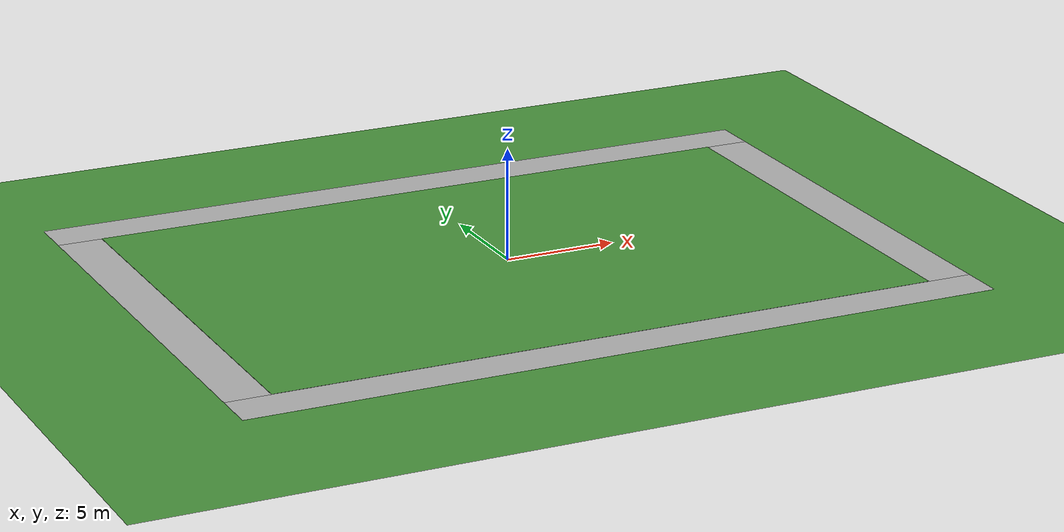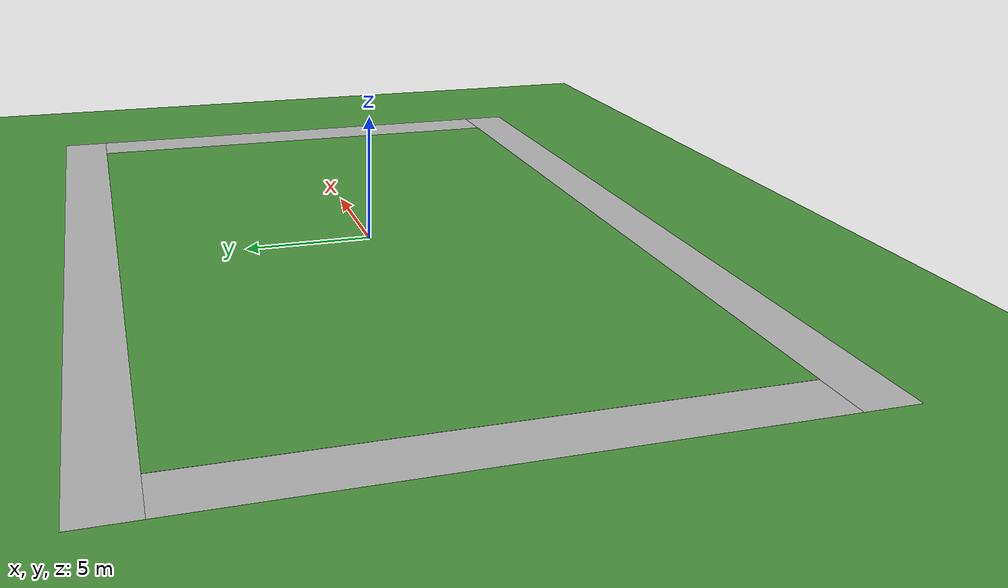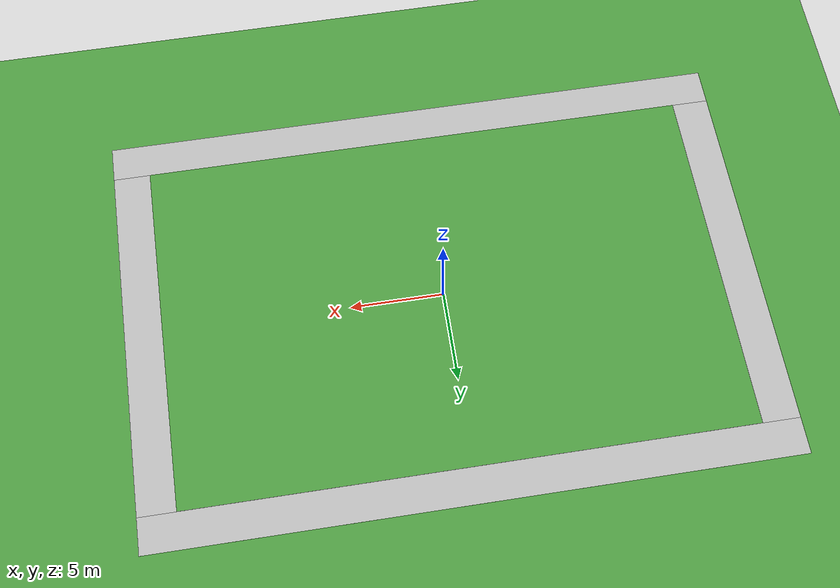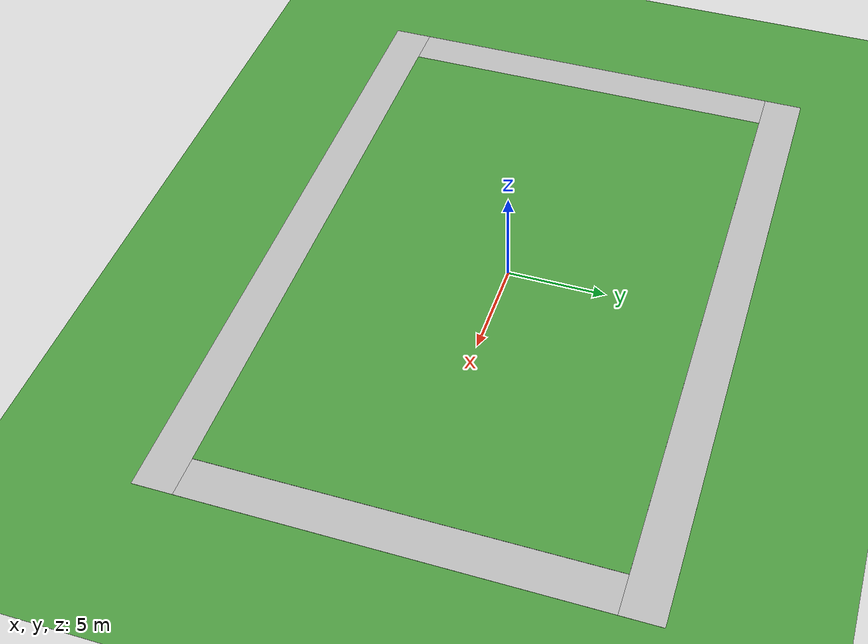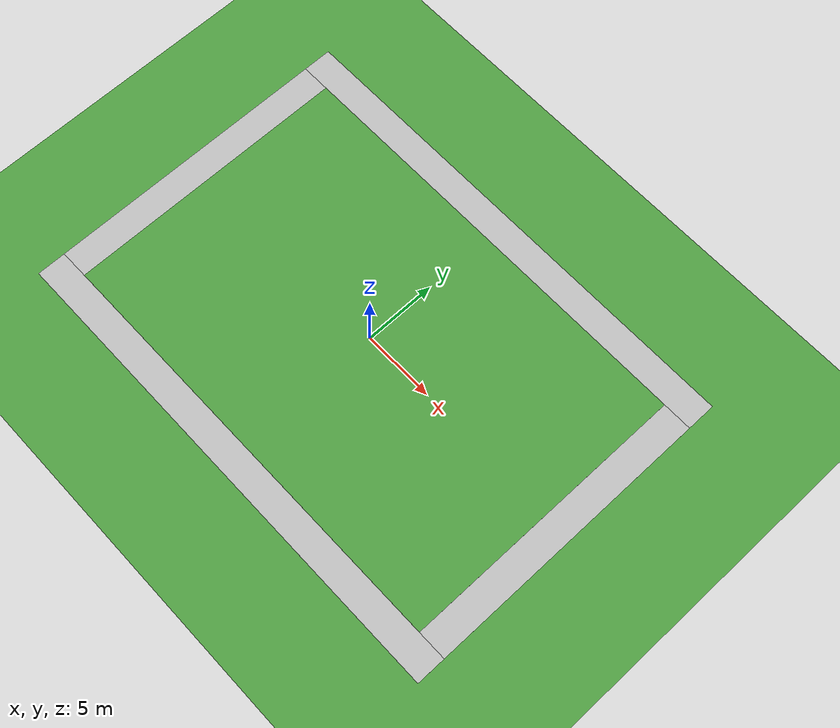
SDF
<sdf version="1.6">
 <world name="default">
  <physics name="default_physics" default="0" type="ode">
   <ode>
    <solver>
     <type>quick</type>
     <iters>100</iters>
     <sor>1</sor>
     <use_dynamic_moi_rescaling>0</use_dynamic_moi_rescaling>
    </solver>
    <constraints>
     <cfm>0</cfm>
     <erp>0.2</erp>
     <contact_max_correcting_vel>0.1</contact_max_correcting_vel>
     <contact_surface_layer>0</contact_surface_layer>
    </constraints>
   </ode>
   <real_time_update_rate>0</real_time_update_rate>
   <max_step_size>0.0025</max_step_size>
   <real_time_factor>1</real_time_factor>
  </physics>
  <light name="sun" type="directional">
   <pose>0 0 10 0 -0 0</pose>
   <diffuse>0.8 0.8 0.8 1</diffuse>
   <specular>0.2 0.2 0.2 1</specular>
   <attenuation>
    <range>1000</range>
    <constant>0.9</constant>
    <linear>0.01</linear>
    <quadratic>0.001</quadratic>
   </attenuation>
   <direction>-0.5 0.1 -0.9</direction>
  </light>
  <model name="ground_plane">
   <static>1</static>
   <link name="link">
    <collision name="collision">
     <geometry><plane><normal>0 0 1</normal><size>5000 5000</size></plane></geometry>
     <surface><friction><ode><mu>1</mu><mu2>1</mu2></ode></friction></surface>
    </collision>
    <visual name="grass">
     <pose>0 0 -0.1 0 -0 0</pose>
     <cast_shadows>0</cast_shadows>
     <geometry><plane><normal>0 0 1</normal><size>5000 5000</size></plane></geometry>
     <material>
      <script><uri>file://media/materials/scripts/gazebo.material</uri><name>Gazebo/Grass</name></script>
     </material>
    </visual>
   </link>
  </model>
  <gravity>0 0 -9.8</gravity>
  <magnetic_field>6e-06 2.3e-05 -4.2e-05</magnetic_field>
  <atmosphere type="adiabatic"/>
  <scene><ambient>0.4 0.4 0.4 1</ambient><background>0.7 0.7 0.7 1</background><shadows>1</shadows></scene>
  <spherical_coordinates>
   <surface_model>EARTH_WGS84</surface_model>
   <latitude_deg>0</latitude_deg>
   <longitude_deg>0</longitude_deg>
   <elevation>0</elevation>
   <heading_deg>0</heading_deg>
  </spherical_coordinates>
  <model name="robocup_3d_field">
   <static>1</static>
   <link name="field">
    <pose>0 0 0.01 0 -0 0</pose>
    <collision name="collision">
     <geometry><plane><normal>0 0 1</normal><size>30 20</size></plane></geometry>
     <surface><friction><ode><mu>100</mu><mu2>50</mu2></ode></friction></surface>
    </collision>
    <visual name="base1">
     <pose>0 11 0.001 0 -0 0</pose>
     <cast_shadows>0</cast_shadows>
     <geometry><plane><normal>0 0 1</normal><size>34 2</size></plane></geometry>
     <material>
      <script>
       <uri>model://robocup_3Dsim_field/materials/scripts/</uri>
       <uri>model://robocup_3Dsim_field/materials/textures/</uri>
       <name>RoboCup/FieldBorder</name>
      </script>
     </material>
    </visual>
    <visual name="base2">
     <pose>0 -11 0.001 0 -0 0</pose>
     <cast_shadows>0</cast_shadows>
     <geometry><plane><normal>0 0 1</normal><size>34 2</size></plane></geometry>
     <material>
      <script>
       <uri>model://robocup_3Dsim_field/materials/scripts/</uri>
       <uri>model://robocup_3Dsim_field/materials/textures/</uri>
       <name>RoboCup/FieldBorder</name>
      </script>
     </material>
    </visual>
    <visual name="base3">
     <pose>16 0 0.001 0 -0 0</pose>
     <cast_shadows>0</cast_shadows>
     <geometry><plane><normal>0 0 1</normal><size>2 20</size></plane></geometry>
     <material>
      <script>
       <uri>model://robocup_3Dsim_field/materials/scripts/</uri>
       <uri>model://robocup_3Dsim_field/materials/textures/</uri>
       <name>RoboCup/FieldBorder</name>
      </script>
     </material>
    </visual>
    <visual name="base4">
     <pose>-16 0 0.001 0 -0 0</pose>
     <cast_shadows>0</cast_shadows>
     <geometry><plane><normal>0 0 1</normal><size>2 20</size></plane></geometry>
     <material>
      <script>
       <uri>model://robocup_3Dsim_field/materials/scripts/</uri>
       <uri>model://robocup_3Dsim_field/materials/textures/</uri>
       <name>RoboCup/FieldBorder</name>
      </script>
     </material>
    </visual>
    <visual name="carpet">
     <cast_shadows>0</cast_shadows>
     <geometry><plane><normal>0 0 1</normal><size>30 20</size></plane></geometry>
     <material>
      <script>
       <uri>model://robocup_3Dsim_field/materials/scripts/</uri>
       <uri>model://robocup_3Dsim_field/materials/textures/</uri>
       <name>RoboCup/Grass</name>
      </script>
     </material>
    </visual>
   </link>
   <pose>0.007311 -0.081077 0 0 -0 0</pose>
  </model>
 </world>
</sdf>
